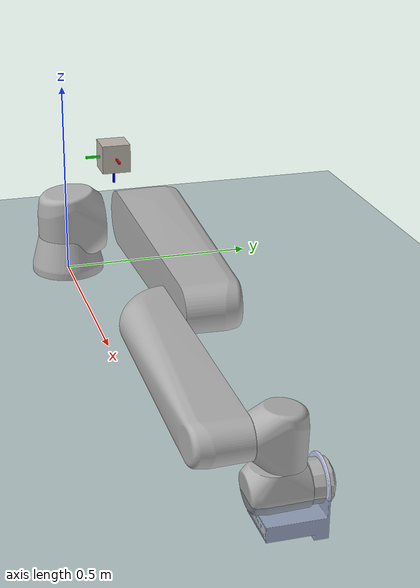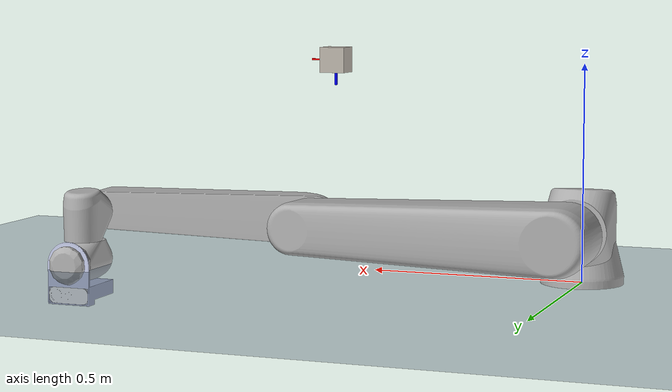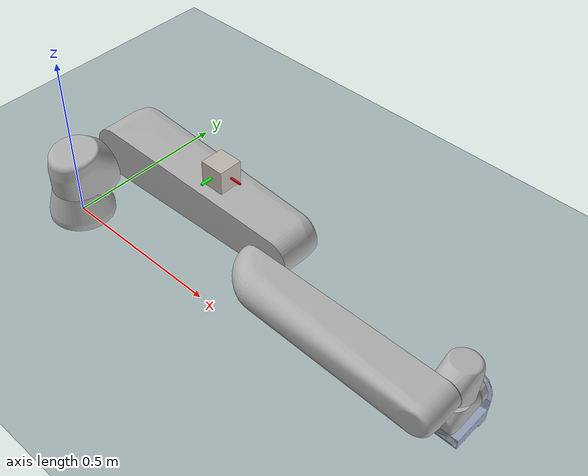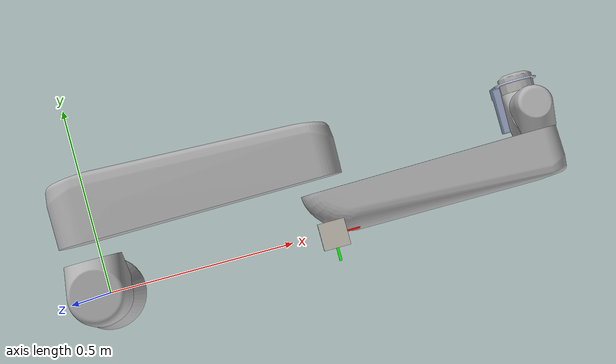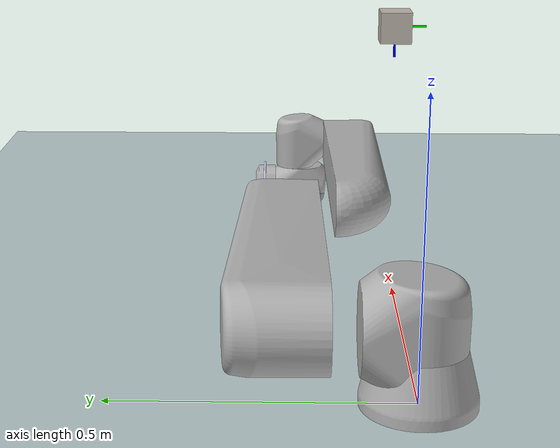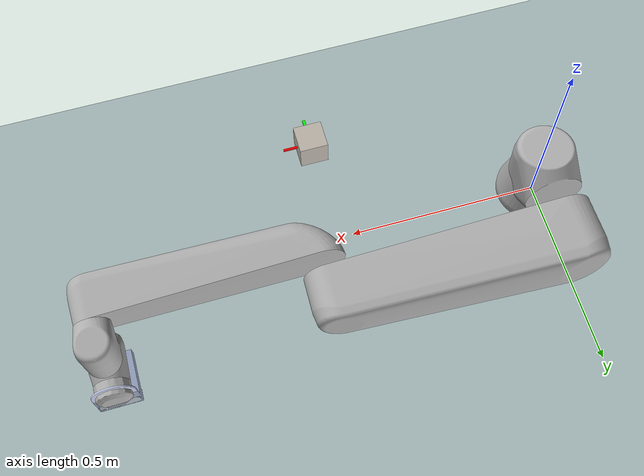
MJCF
<mujoco model="cube_ur10_scene">
  <asset>
    <!-- include basic cube textures/materials -->
    <texture name="cube" type="cube"
             fileup="../../reorientation_cube/textures/fileup.png"
             fileback="../../reorientation_cube/textures/fileback.png"
             filedown="../../reorientation_cube/textures/filedown.png"
             filefront="../../reorientation_cube/textures/filefront.png"
             fileleft="../../reorientation_cube/textures/fileleft.png"
             fileright="../../reorientation_cube/textures/fileright.png"/>
    <material name="cube" texture="cube"/>
    <material name="red" rgba="1 0 0 1"/>
    <material name="green" rgba="0 1 0 1"/>
    <material name="blue" rgba="0 0 1 1"/>
    <!-- ground texture + material (for floor) -->
    <texture type="2d" name="groundplane" builtin="checker" mark="edge" rgb1="0.2 0.3 0.4" rgb2="0.1 0.2 0.3"
      markrgb="0.8 0.8 0.8" width="300" height="300"/>
    <material name="groundplane" texture="groundplane" texuniform="true" texrepeat="5 5" reflectance="0.2"/>
  </asset>

  <!-- match IMU rate: 0.0025s -> 400Hz -->
  <option timestep="0.0025" gravity="0 0 0"/>

  <!-- include UR10 model (relative path) -->
  <include file="ur10_manipulation.xml"/>

  <worldbody>
    <!-- directional light and ground plane (from ur10 scene) -->
    <light pos="0 0 1.5" dir="0 0 -1" directional="true"/>
    <geom name="floor" size="0 0 0.05" type="plane" material="groundplane"/>

    <!-- keep any world content from included UR10; add a cube with freejoint for orientation visualization -->
    <body name="cube" pos="0.6 0.0 0.5" quat="0 1 0 0">
      <freejoint/>
      <geom name="cube" type="box" size=".03 .03 .03" mass=".122" material="cube"/>
      <!-- visualization axes (rotate with cube) -->
      <geom name="axis_x" type="box" size=".03 .002 .002" pos=".03 0 0" material="red"/>
      <geom name="axis_y" type="box" size=".003 .03 .002" pos="0 .03 0" material="green"/>
      <geom name="axis_z" type="box" size=".003 .002 .03" pos="0 0 .03" material="blue"/>
    </body>
  </worldbody>

  <sensor>
    <framepos name="cube_position" objtype="body" objname="cube"/>
    <framequat name="cube_orientation" objtype="body" objname="cube"/>
    <framelinvel name="cube_linear_velocity" objtype="body" objname="cube"/>
    <frameangvel name="cube_angular_velocity" objtype="body" objname="cube"/>
    <!-- also expose UR10 attachment site if available -->
    <framepos name="ee_position" objtype="body" objname="attachment"/>
    <framequat name="ee_orientation" objtype="body" objname="attachment"/>
  </sensor>
</mujoco>

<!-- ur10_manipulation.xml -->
<mujoco model="ur10_manip">
  <compiler angle="radian" autolimits="true"/>

  <default>
    <default class="ur10">
      <joint axis="0 1 0" range="-6.28319 6.28319" armature="0.1"/>
      <position ctrlrange="-6.2831 6.2831"/>
      <general biastype="affine" ctrlrange="-6.2831 6.2831" gainprm="5000" biasprm="0 -5000 -500"/>
    </default>
    <default class="2f85">
      <mesh scale="0.001 0.001 0.001"/>
      <general biastype="affine"/>
      <site type="sphere" rgba="0.9 0.9 0.9 1" size="0.005" group="4"/>
      <joint axis="1 0 0"/>
      <default class="driver">
        <joint range="0 0.8" armature="0.005" damping="0.1" solimplimit="0.95 0.99 0.001" solreflimit="0.005 1"/>
      </default>
      <default class="follower">
        <joint range="-0.872664 0.872664" pos="0 -0.018 0.0065" solimplimit="0.95 0.99 0.001" solreflimit="0.005 1"/>
      </default>
      <default class="spring_link">
        <joint range="-0.29670597283 0.8" stiffness="0.05" springref="2.62" damping="0.00125"/>
      </default>
      <default class="coupler">
        <joint range="-1.57 0" solimplimit="0.95 0.99 0.001" solreflimit="0.005 1"/>
      </default>
      <default class="2f85/visual">
        <geom type="mesh" contype="0" conaffinity="0" group="2"/>
      </default>
      <default class="2f85/collision">
        <geom type="mesh" group="3"/>
        <default class="pad_box1">
          <geom mass="0" type="box" pos="0 -0.0026 0.028125" size="0.011 0.004 0.009375" friction="0.7"
            solimp="0.95 0.99 0.001" solref="0.004 1" priority="1" rgba="0.55 0.55 0.55 1"/>
        </default>
        <default class="pad_box2">
          <geom mass="0" type="box" pos="0 -0.0026 0.009375" size="0.011 0.004 0.009375" friction="0.6"
            solimp="0.95 0.99 0.001" solref="0.004 1" priority="1" rgba="0.45 0.45 0.45 1"/>
        </default>
      </default>
    </default>
  </default>

  <asset>
    <material name="gray" rgba="0.4627 0.4627 0.4627 1"/>
    <material name="black" rgba="0.149 0.149 0.149 1"/>

    <mesh name="base0" file="../assets/base.stl"/>
    <mesh name="shoulder" file="../assets/shoulder.stl"/>
    <mesh name="upperarm" file="../assets/upperarm.stl"/>
    <mesh name="forearm" file="../assets/forearm.stl"/>
    <mesh name="wrist1" file="../assets/wrist1.stl"/>
    <mesh name="wrist2" file="../assets/wrist2.stl"/>
    <mesh name="wrist3" file="../assets/wrist3.stl"/>

    <mesh name="mount_Link" file="../../kinect_dk/assets/mount_v2.STL"/>
    <mesh name="camera_Link" file="../../kinect_dk/assets/Azure Kinect DK.STL"/>

    <mesh class="2f85" file="../../robotiq_2f85/assets/base_mount.stl"/>
    <mesh class="2f85" file="../../robotiq_2f85/assets/base.stl"/>
    <mesh class="2f85" file="../../robotiq_2f85/assets/driver.stl"/>
    <mesh class="2f85" file="../../robotiq_2f85/assets/coupler.stl"/>
    <mesh class="2f85" file="../../robotiq_2f85/assets/follower.stl"/>
    <mesh class="2f85" file="../../robotiq_2f85/assets/pad.stl"/>
    <mesh class="2f85" file="../../robotiq_2f85/assets/silicone_pad.stl"/>
    <mesh class="2f85" file="../../robotiq_2f85/assets/spring_link.stl"/>
  </asset>

  <worldbody>
    <body name="base0" childclass="ur10">
      <geom quat="-1 0 0 0" type="mesh" rgba="0.7 0.7 0.7 1" mesh="base0"/>
      <body name="shoulder_link" pos="0 0 0.1273" quat="0 0 0 1">
        <inertial pos="0.021 -0.027 0" quat="0.988634 -0.000680926 0.148578 -0.0229591" mass="7.1" diaginertia="0.0353866 0.0352903 0.0202532"/>
        <joint name="joint1" pos="0 0 0" axis="0 0 1" range="-6.28319 6.28319" damping="10"/>
        <geom quat="0 0 0 1" type="mesh" rgba="0.7 0.7 0.7 1" mesh="shoulder"/>
        <body name="upper_arm_link" quat="0.707107 0.707107 0 0">
          <inertial pos="-0.232 0 0.158" quat="0.500033 0.499784 0.489585 0.510381" mass="12.7" diaginertia="0.77068 0.769758 0.0278114"/>
          <joint name="joint2" pos="0 0 0" axis="0 0 1" range="-6.28319 6.28319" damping="10"/>
          <geom pos="0 0 0.220941" quat="0.5 0.5 -0.5 -0.5" type="mesh" rgba="0.7 0.7 0.7 1" mesh="upperarm"/>
          <body name="forearm_link" pos="-0.612 0 0">
            <inertial pos="-0.3323 0 0.068" quat="0.492051 0.507971 0.507346 0.492394" mass="4.27" diaginertia="0.30928 0.306743 0.00985709"/>
            <joint name="joint3" pos="0 0 0" axis="0 0 1" range="-3.14159 3.14159" damping="5"/>
            <geom pos="0 0 0.049042" quat="0.5 0.5 -0.5 -0.5" type="mesh" rgba="0.7 0.7 0.7 1" mesh="forearm"/>
            <body name="wrist_1_link" pos="-0.5723 0 0.163941">
              <inertial pos="0 -0.018 0.007" quat="0.525776 0.850564 -0.0100431 9.45801e-05" mass="2" diaginertia="0.00296017 0.00269992 0.00209991"/>
              <joint name="joint4" pos="0 0 0" axis="0 0 1" range="-6.28319 6.28319" damping="2"/>
              <geom pos="0 0 -0.1149" quat="0.707107 0.707107 0 0" type="mesh" rgba="0.7 0.7 0.7 1" mesh="wrist1"/>
              <body name="wrist_2_link" pos="0 -0.1157 -2.37305e-11" quat="0.707107 0.707107 0 0">
                <inertial pos="0 0.018 -0.007" quat="0.525776 0.850564 -0.0100431 9.45801e-05" mass="2" diaginertia="0.00296017 0.00269992 0.00209991"/>
                <joint name="joint5" pos="0 0 0" axis="0 0 1" range="-6.28319 6.28319" damping="2"/>
                <geom pos="0 0 -0.1158" quat="1 0 0 0" type="mesh" rgba="0.7 0.7 0.7 1" mesh="wrist2"/>
                <body name="wrist_3_link" pos="0 0.0922 -1.89105e-11" quat="0.707107 -0.707107 0 0">
                  <inertial pos="0 0 -0.026" quat="0.707107 0 0 0.707107" mass="0.365" diaginertia="0.00041 0.0004 0.00034"/>
                  <joint name="joint6" pos="0 0 0" axis="0 0 1" range="-6.28319 6.28319" damping="2"/>
                  <geom pos="0 0 -0.0922" quat="0.707107 0.707107 0 0" type="mesh" rgba="0.7 0.7 0.7 1" mesh="wrist3"/>
                  <geom pos="0 0 0" quat="0 1 0 0" type="mesh" rgba="0.792157 0.819608 0.933333 1" mesh="mount_Link"/>
                  <geom pos="0 -0.0735 -0.021" quat="1 0 0 0" type="mesh" rgba="0.941176 0.941176 0.941176 1" mesh="camera_Link"/>
                  <camera name="handcam_depth" pos="0 -0.073 -0.01" fovy="70" quat="0 1 -1 0"/>
                  <camera name="handcam_rgb" pos="-0.032 -0.071 -0.01" fovy="75" quat="0 1 -1 0"/>
                  <body name="attachment" pos="0 0 0.01" quat="0.707107 0 0 -0.707107">
                    <site name="attachment_site" quat="0 0 0 1"/>
                    <body name="base_mount" quat="-1 0 0 1" childclass="2f85">
                      <geom class="2f85/visual" mesh="base_mount" material="black"/>
                      <geom class="2f85/collision" mesh="base_mount"/>
                      <body name="base" pos="0 0 0.0038" quat="1 0 0 -1">
                        <inertial mass="0.777441" pos="0 -2.70394e-05 0.0354675" quat="1 -0.00152849 0 0"
                          diaginertia="0.000260285 0.000225381 0.000152708"/>
                        <geom class="2f85/visual" mesh="base" material="black"/>
                        <geom class="2f85/collision" mesh="base"/>
                        <site name="pinch" pos="0 0 0.145"/>
                        <body name="right_driver" pos="0 0.0306011 0.054904">
                          <inertial mass="0.00899563" pos="2.96931e-12 0.0177547 0.00107314"
                            quat="0.681301 0.732003 0 0" diaginertia="1.72352e-06 1.60906e-06 3.22006e-07"/>
                          <joint name="right_driver_joint" class="driver"/>
                          <geom class="2f85/visual" mesh="driver" material="gray"/>
                          <geom class="2f85/collision" mesh="driver"/>
                          <body name="right_coupler" pos="0 0.0315 -0.0041">
                            <inertial mass="0.0140974" pos="0 0.00301209 0.0232175"
                              quat="0.705636 -0.0455904 0.0455904 0.705636"
                              diaginertia="4.16206e-06 3.52216e-06 8.88131e-07"/>
                            <joint name="right_coupler_joint" class="coupler"/>
                            <geom class="2f85/visual" mesh="coupler" material="black"/>
                            <geom class="2f85/collision" mesh="coupler"/>
                          </body>
                        </body>
                        <body name="right_spring_link" pos="0 0.0132 0.0609">
                          <inertial mass="0.0221642" pos="-8.65005e-09 0.0181624 0.0212658"
                            quat="0.663403 -0.244737 0.244737 0.663403"
                            diaginertia="8.96853e-06 6.71733e-06 2.63931e-06"/>
                          <joint name="right_spring_link_joint" class="spring_link"/>
                          <geom class="2f85/visual" mesh="spring_link" material="black"/>
                          <geom class="2f85/collision" mesh="spring_link"/>
                          <body name="right_follower" pos="0 0.055 0.0375">
                            <inertial mass="0.0125222" pos="0 -0.011046 0.0124786" quat="1 0.1664 0 0"
                              diaginertia="2.67415e-06 2.4559e-06 6.02031e-07"/>
                            <joint name="right_follower_joint" class="follower"/>
                            <geom class="2f85/visual" mesh="follower" material="black"/>
                            <geom class="2f85/collision" mesh="follower"/>
                            <body name="right_pad" pos="0 -0.0189 0.01352">
                              <geom class="pad_box1" name="right_pad1"/>
                              <geom class="pad_box2" name="right_pad2"/>
                              <inertial mass="0.0035" pos="0 -0.0025 0.0185" quat="0.707107 0 0 0.707107"
                                diaginertia="4.73958e-07 3.64583e-07 1.23958e-07"/>
                              <geom class="2f85/visual" mesh="pad"/>
                              <body name="right_silicone_pad">
                                <geom class="2f85/visual" mesh="silicone_pad" material="black"/>
                              </body>
                            </body>
                          </body>
                        </body>
                        <body name="left_driver" pos="0 -0.0306011 0.054904" quat="0 0 0 1">
                          <inertial mass="0.00899563" pos="0 0.0177547 0.00107314" quat="0.681301 0.732003 0 0"
                            diaginertia="1.72352e-06 1.60906e-06 3.22006e-07"/>
                          <joint name="left_driver_joint" class="driver"/>
                          <geom class="2f85/visual" mesh="driver" material="gray"/>
                          <geom class="2f85/collision" mesh="driver"/>
                          <body name="left_coupler" pos="0 0.0315 -0.0041">
                            <inertial mass="0.0140974" pos="0 0.00301209 0.0232175"
                              quat="0.705636 -0.0455904 0.0455904 0.705636"
                              diaginertia="4.16206e-06 3.52216e-06 8.88131e-07"/>
                            <joint name="left_coupler_joint" class="coupler"/>
                            <geom class="2f85/visual" mesh="coupler" material="black"/>
                            <geom class="2f85/collision" mesh="coupler"/>
                          </body>
                        </body>
                        <body name="left_spring_link" pos="0 -0.0132 0.0609" quat="0 0 0 1">
                          <inertial mass="0.0221642" pos="-8.65005e-09 0.0181624 0.0212658"
                            quat="0.663403 -0.244737 0.244737 0.663403"
                            diaginertia="8.96853e-06 6.71733e-06 2.63931e-06"/>
                          <joint name="left_spring_link_joint" class="spring_link"/>
                          <geom class="2f85/visual" mesh="spring_link" material="black"/>
                          <geom class="2f85/collision" mesh="spring_link"/>
                          <body name="left_follower" pos="0 0.055 0.0375">
                            <inertial mass="0.0125222" pos="0 -0.011046 0.0124786" quat="1 0.1664 0 0"
                              diaginertia="2.67415e-06 2.4559e-06 6.02031e-07"/>
                            <joint name="left_follower_joint" class="follower"/>
                            <geom class="2f85/visual" mesh="follower" material="black"/>
                            <geom class="2f85/collision" mesh="follower"/>
                            <body name="left_pad" pos="0 -0.0189 0.01352">
                              <geom class="pad_box1" name="left_pad1"/>
                              <geom class="pad_box2" name="left_pad2"/>
                              <inertial mass="0.0035" pos="0 -0.0025 0.0185" quat="1 0 0 1"
                                diaginertia="4.73958e-07 3.64583e-07 1.23958e-07"/>
                              <geom class="2f85/visual" mesh="pad"/>
                              <body name="left_silicone_pad">
                                <geom class="2f85/visual" mesh="silicone_pad" material="black"/>
                              </body>
                            </body>
                          </body>
                        </body>
                      </body>
                    </body>
                  </body>
                </body>
              </body>
            </body>
          </body>
        </body>
      </body>
    </body>
  </worldbody>

  <contact>
    <exclude body1="base" body2="left_driver"/>
    <exclude body1="base" body2="right_driver"/>
    <exclude body1="base" body2="left_spring_link"/>
    <exclude body1="base" body2="right_spring_link"/>
    <exclude body1="right_coupler" body2="right_follower"/>
    <exclude body1="left_coupler" body2="left_follower"/>
  </contact>

  <tendon>
    <fixed name="split">
      <joint joint="right_driver_joint" coef="0.5"/>
      <joint joint="left_driver_joint" coef="0.5"/>
    </fixed>
  </tendon>

  <equality>
    <connect anchor="0 0 0" body1="right_follower" body2="right_coupler" solimp="0.95 0.99 0.001" solref="0.005 1"/>
    <connect anchor="0 0 0" body1="left_follower" body2="left_coupler" solimp="0.95 0.99 0.001" solref="0.005 1"/>
    <joint joint1="right_driver_joint" joint2="left_driver_joint" polycoef="0 1 0 0 0" solimp="0.95 0.99 0.001"
      solref="0.005 1"/>
  </equality>

  <actuator>
    <general class="ur10" name="actuator1" joint="joint1" gainprm="4500" biasprm="0 -4500 -450" forcerange="-330 330"/>
    <general class="ur10" name="actuator2" joint="joint2" gainprm="4500" biasprm="0 -4500 -450" forcerange="-330 330"/>
    <general class="ur10" name="actuator3" joint="joint3" gainprm="3500" biasprm="0 -3500 -350" forcerange="-150 150" ctrlrange="-3.1415 3.1415"/>
    <general class="ur10" name="actuator4" joint="joint4" gainprm="3500" biasprm="0 -3500 -350" forcerange="-56 56"/>
    <general class="ur10" name="actuator5" joint="joint5" gainprm="2000" biasprm="0 -2000 -200" forcerange="-56 56"/>
    <general class="ur10" name="actuator6" joint="joint6" gainprm="2000" biasprm="0 -2000 -200" forcerange="-56 56"/>
    <general class="2f85" name="fingers_actuator" tendon="split" forcerange="-5 5" ctrlrange="0 255"
      gainprm="0.3137255 0 0" biasprm="0 -100 -10"/>
  </actuator>

</mujoco>
